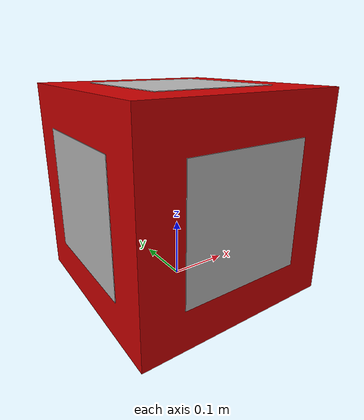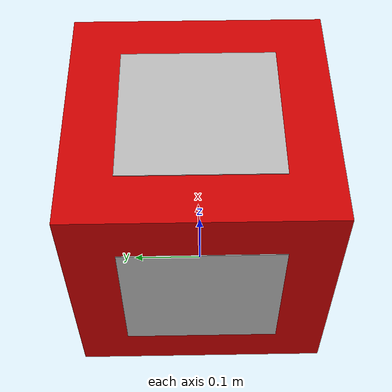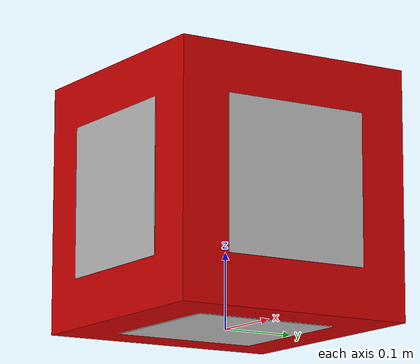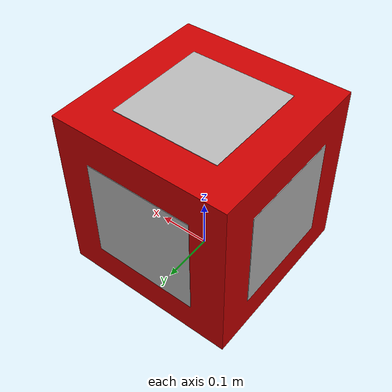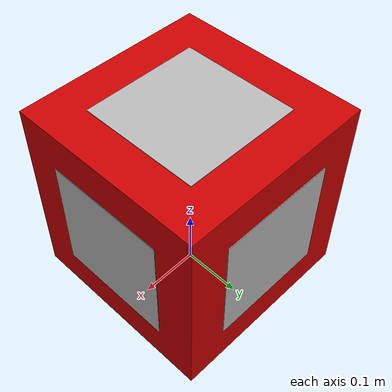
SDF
<?xml version="1.0" ?>
<sdf version='1.7'>
  <model name='red_box_baseball_bat'>
    <static>true</static>
    <link name='link'>
      <pose>0 0 0.165 0 0 0</pose>
      <visual name='box_visual'>
        <geometry>
          <box><size>0.33 0.33 0.33</size></box>
        </geometry>
        <material>
          <ambient>0.8 0.0 0.0 1</ambient>
          <diffuse>0.8 0.0 0.0 1</diffuse>
          <specular>0.1 0.1 0.1 1</specular>
          <emissive>0 0 0 0</emissive>
        </material>
      </visual>
      <collision name='collision'>
        <geometry>
          <box><size>0.33 0.33 0.33</size></box>
        </geometry>
      </collision>
    </link>

    <!-- AprilTag on top face -->
    <link name="apriltag_top">
      <pose>0 0 0.331 0 0 0</pose>
      <visual name="tag_visual_top">
        <geometry>
          <box><size>0.2 0.2 0.001</size></box>
        </geometry>
        <material>
          <script>
            <uri>model://red_box_baseball_bat/materials/scripts</uri>
            <name>Tag8</name>
          </script>
        </material>
      </visual>
    </link>

    <!-- AprilTag on bottom face -->
    <link name="apriltag_bottom">
      <pose>0 0 -0.001 0 0 0</pose>
      <visual name="tag_visual_bottom">
        <geometry>
          <box><size>0.2 0.2 0.001</size></box>
        </geometry>
        <material>
          <script>
            <uri>model://red_box_baseball_bat/materials/scripts</uri>
            <name>Tag8</name>
          </script>
        </material>
      </visual>
    </link>

    <!-- AprilTag on front face -->
    <link name="apriltag_front">
      <pose>0 0.166 0.165 1.5708 0 0</pose>
      <visual name="tag_visual_front">
        <geometry>
          <box><size>0.2 0.2 0.001</size></box>
        </geometry>
        <material>
          <script>
            <uri>model://red_box_baseball_bat/materials/scripts</uri>
            <name>Tag8</name>
          </script>
        </material>
      </visual>
    </link>

    <!-- AprilTag on back face -->
    <link name="apriltag_back">
      <pose>0 -0.166 0.165 -1.5708 0 0</pose>
      <visual name="tag_visual_back">
        <geometry>
          <box><size>0.2 0.2 0.001</size></box>
        </geometry>
        <material>
          <script>
            <uri>model://red_box_baseball_bat/materials/scripts</uri>
            <name>Tag8</name>
          </script>
        </material>
      </visual>
    </link>

    <!-- AprilTag on right face -->
    <link name="apriltag_right">
      <pose>0.166 0 0.165 0 1.5708 0</pose>
      <visual name="tag_visual_right">
        <geometry>
          <box><size>0.2 0.2 0.001</size></box>
        </geometry>
        <material>
          <script>
            <uri>model://red_box_baseball_bat/materials/scripts</uri>
            <name>Tag8</name>
          </script>
        </material>
      </visual>
    </link>

    <!-- AprilTag on left face -->
    <link name="apriltag_left">
      <pose>-0.166 0 0.165 0 -1.5708 0</pose>
      <visual name="tag_visual_left">
        <geometry>
          <box><size>0.2 0.2 0.001</size></box>
        </geometry>
        <material>
          <script>
            <uri>model://red_box_baseball_bat/materials/scripts</uri>
            <name>Tag8</name>
          </script>
        </material>
      </visual>
    </link>

    <!-- Joints to attach all AprilTags -->
    <joint name="tag_joint_top" type="fixed">
      <parent>link</parent>
      <child>apriltag_top</child>
    </joint>
    <joint name="tag_joint_bottom" type="fixed">
      <parent>link</parent>
      <child>apriltag_bottom</child>
    </joint>
    <joint name="tag_joint_front" type="fixed">
      <parent>link</parent>
      <child>apriltag_front</child>
    </joint>
    <joint name="tag_joint_back" type="fixed">
      <parent>link</parent>
      <child>apriltag_back</child>
    </joint>
    <joint name="tag_joint_right" type="fixed">
      <parent>link</parent>
      <child>apriltag_right</child>
    </joint>
    <joint name="tag_joint_left" type="fixed">
      <parent>link</parent>
      <child>apriltag_left</child>
    </joint>
  </model>
</sdf>
